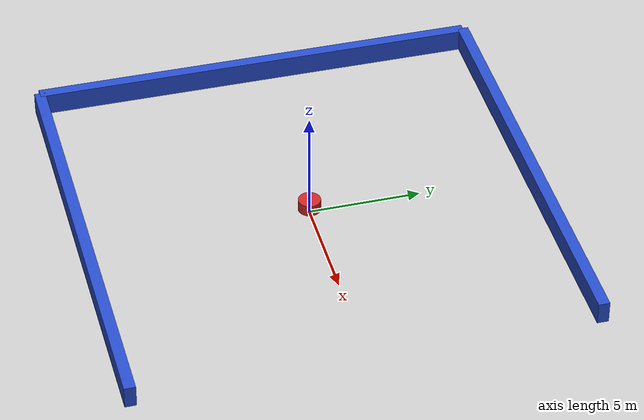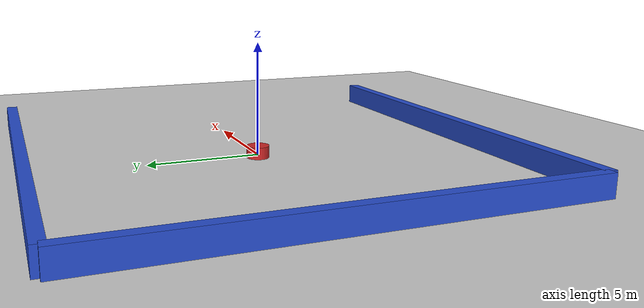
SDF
<?xml version="1.0" ?>
<sdf version="1.6">
   <world name="default">
    <model name="ground_plane">
      <static>1</static>
      <link name="link">
        <collision name="collision">
          <geometry><plane><normal>0 0 1</normal><size>100 100</size></plane></geometry>
          <surface><friction><ode><mu>100</mu><mu2>50</mu2></ode><torsional><ode/></torsional></friction><contact><ode/></contact></surface>
        </collision>
        <visual name="visual">
          <cast_shadows>0</cast_shadows>
          <geometry><plane><normal>0 0 1</normal><size>100 100</size></plane></geometry>
          <material><ambient>0.8 0.8 0.8 1</ambient><diffuse>0.8 0.8 0.8 1</diffuse><specular>0.01 0.01 0.01 1</specular></material>
        </visual>
      </link>
    </model>
    <light name="sun" type="directional">
      <cast_shadows>1</cast_shadows>
      <pose>0 0 10 0 0 0</pose>
      <diffuse>1 1 1 1</diffuse>
      <specular>0.1 0.1 0.1 1</specular>
      <attenuation><range>1000</range><constant>0.9</constant><linear>0.01</linear><quadratic>0.001</quadratic></attenuation>
      <direction>-0.5 0.5 -1</direction>
    </light>

    <model name='hardlibobs_110'>
      <static>1</static>
      <pose frame=''>-0.225000 0.075000 0.000000 0.000000 0.000000 0.000000</pose>
      <link name='link'>
        <inertial>
          <mass>1</mass>
          <inertia>
            <ixx>0.145833</ixx>
            <ixy>0</ixy>
            <ixz>0</ixz>
            <iyy>0.145833</iyy>
            <iyz>0</iyz>
            <izz>0.125</izz>
          </inertia>
        </inertial>
        <collision name='collision'>
           <geometry>
            <cylinder>
                <radius>0.5000</radius>
                 <length> 1 </length>
            </cylinder>
          </geometry>
           <surface>
            <contact>
              <ode/>
            </contact>
            <bounce/>
            <friction>
              <torsional>
                <ode/>
              </torsional>
              <ode/>
            </friction>
          </surface>
        </collision>
        <visual name='visual'>
           <geometry>
            <cylinder>
                <radius>0.5000</radius>
                 <length> 1 </length>
            </cylinder>
          </geometry>
          <material>
            <script>
              <name>Gazebo/Red</name>
              <uri>file://media/materials/scripts/gazebo.material</uri>
            </script>
          </material>
        </visual>
        <self_collide>0</self_collide>
        <kinematic>0</kinematic>
        <gravity>1</gravity>
      </link>
      <plugin name='hardlibobs_110' filename='hardlibobs_110.so'/>
    </model>

    <model name='hardlibobs_57'>
      <static>1</static>
      <pose frame=''>-0.225000 0.075000 0.000000 0.000000 0.000000 0.000000</pose>
      <link name='link'>
        <inertial>
          <mass>1</mass>
          <inertia>
            <ixx>0.145833</ixx>
            <ixy>0</ixy>
            <ixz>0</ixz>
            <iyy>0.145833</iyy>
            <iyz>0</iyz>
            <izz>0.125</izz>
          </inertia>
        </inertial>
        <collision name='collision'>
           <geometry>
            <cylinder>
                <radius>0.5000</radius>
                 <length> 1 </length>
            </cylinder>
          </geometry>
           <surface>
            <contact>
              <ode/>
            </contact>
            <bounce/>
            <friction>
              <torsional>
                <ode/>
              </torsional>
              <ode/>
            </friction>
          </surface>
        </collision>
        <visual name='visual'>
           <geometry>
            <cylinder>
                <radius>0.5000</radius>
                 <length> 1 </length>
            </cylinder>
          </geometry>
          <material>
            <script>
              <name>Gazebo/Red</name>
              <uri>file://media/materials/scripts/gazebo.material</uri>
            </script>
          </material>
        </visual>
        <self_collide>0</self_collide>
        <kinematic>0</kinematic>
        <gravity>1</gravity>
      </link>
      <plugin name='hardlibobs_57' filename='hardlibobs_57.so'/>
    </model>

    <model name='hardlibobs_53'>
      <static>1</static>
      <pose frame=''>-0.225000 0.075000 0.000000 0.000000 0.000000 0.000000</pose>
      <link name='link'>
        <inertial>
          <mass>1</mass>
          <inertia>
            <ixx>0.145833</ixx>
            <ixy>0</ixy>
            <ixz>0</ixz>
            <iyy>0.145833</iyy>
            <iyz>0</iyz>
            <izz>0.125</izz>
          </inertia>
        </inertial>
        <collision name='collision'>
           <geometry>
            <cylinder>
                <radius>0.5000</radius>
                 <length> 1 </length>
            </cylinder>
          </geometry>
           <surface>
            <contact>
              <ode/>
            </contact>
            <bounce/>
            <friction>
              <torsional>
                <ode/>
              </torsional>
              <ode/>
            </friction>
          </surface>
        </collision>
        <visual name='visual'>
           <geometry>
            <cylinder>
                <radius>0.5000</radius>
                 <length> 1 </length>
            </cylinder>
          </geometry>
          <material>
            <script>
              <name>Gazebo/Red</name>
              <uri>file://media/materials/scripts/gazebo.material</uri>
            </script>
          </material>
        </visual>
        <self_collide>0</self_collide>
        <kinematic>0</kinematic>
        <gravity>1</gravity>
      </link>
      <plugin name='hardlibobs_53' filename='hardlibobs_53.so'/>
    </model>

    <model name='hardlibobs_137'>
      <static>1</static>
      <pose frame=''>-0.225000 0.075000 0.000000 0.000000 0.000000 0.000000</pose>
      <link name='link'>
        <inertial>
          <mass>1</mass>
          <inertia>
            <ixx>0.145833</ixx>
            <ixy>0</ixy>
            <ixz>0</ixz>
            <iyy>0.145833</iyy>
            <iyz>0</iyz>
            <izz>0.125</izz>
          </inertia>
        </inertial>
        <collision name='collision'>
           <geometry>
            <cylinder>
                <radius>0.5000</radius>
                 <length> 1 </length>
            </cylinder>
          </geometry>
           <surface>
            <contact>
              <ode/>
            </contact>
            <bounce/>
            <friction>
              <torsional>
                <ode/>
              </torsional>
              <ode/>
            </friction>
          </surface>
        </collision>
        <visual name='visual'>
           <geometry>
            <cylinder>
                <radius>0.5000</radius>
                 <length> 1 </length>
            </cylinder>
          </geometry>
          <material>
            <script>
              <name>Gazebo/Red</name>
              <uri>file://media/materials/scripts/gazebo.material</uri>
            </script>
          </material>
        </visual>
        <self_collide>0</self_collide>
        <kinematic>0</kinematic>
        <gravity>1</gravity>
      </link>
      <plugin name='hardlibobs_137' filename='hardlibobs_137.so'/>
    </model>

    <model name='hardlibobs_120'>
      <static>1</static>
      <pose frame=''>-0.225000 0.075000 0.000000 0.000000 0.000000 0.000000</pose>
      <link name='link'>
        <inertial>
          <mass>1</mass>
          <inertia>
            <ixx>0.145833</ixx>
            <ixy>0</ixy>
            <ixz>0</ixz>
            <iyy>0.145833</iyy>
            <iyz>0</iyz>
            <izz>0.125</izz>
          </inertia>
        </inertial>
        <collision name='collision'>
           <geometry>
            <cylinder>
                <radius>0.5000</radius>
                 <length> 1 </length>
            </cylinder>
          </geometry>
           <surface>
            <contact>
              <ode/>
            </contact>
            <bounce/>
            <friction>
              <torsional>
                <ode/>
              </torsional>
              <ode/>
            </friction>
          </surface>
        </collision>
        <visual name='visual'>
           <geometry>
            <cylinder>
                <radius>0.5000</radius>
                 <length> 1 </length>
            </cylinder>
          </geometry>
          <material>
            <script>
              <name>Gazebo/Red</name>
              <uri>file://media/materials/scripts/gazebo.material</uri>
            </script>
          </material>
        </visual>
        <self_collide>0</self_collide>
        <kinematic>0</kinematic>
        <gravity>1</gravity>
      </link>
      <plugin name='hardlibobs_120' filename='hardlibobs_120.so'/>
    </model>

    <model name='hardlibobs_166'>
      <static>1</static>
      <pose frame=''>-0.225000 0.075000 0.000000 0.000000 0.000000 0.000000</pose>
      <link name='link'>
        <inertial>
          <mass>1</mass>
          <inertia>
            <ixx>0.145833</ixx>
            <ixy>0</ixy>
            <ixz>0</ixz>
            <iyy>0.145833</iyy>
            <iyz>0</iyz>
            <izz>0.125</izz>
          </inertia>
        </inertial>
        <collision name='collision'>
           <geometry>
            <cylinder>
                <radius>0.5000</radius>
                 <length> 1 </length>
            </cylinder>
          </geometry>
           <surface>
            <contact>
              <ode/>
            </contact>
            <bounce/>
            <friction>
              <torsional>
                <ode/>
              </torsional>
              <ode/>
            </friction>
          </surface>
        </collision>
        <visual name='visual'>
           <geometry>
            <cylinder>
                <radius>0.5000</radius>
                 <length> 1 </length>
            </cylinder>
          </geometry>
          <material>
            <script>
              <name>Gazebo/Red</name>
              <uri>file://media/materials/scripts/gazebo.material</uri>
            </script>
          </material>
        </visual>
        <self_collide>0</self_collide>
        <kinematic>0</kinematic>
        <gravity>1</gravity>
      </link>
      <plugin name='hardlibobs_166' filename='hardlibobs_166.so'/>
    </model>

    <model name='hardlibobs_177'>
      <static>1</static>
      <pose frame=''>-0.225000 0.075000 0.000000 0.000000 0.000000 0.000000</pose>
      <link name='link'>
        <inertial>
          <mass>1</mass>
          <inertia>
            <ixx>0.145833</ixx>
            <ixy>0</ixy>
            <ixz>0</ixz>
            <iyy>0.145833</iyy>
            <iyz>0</iyz>
            <izz>0.125</izz>
          </inertia>
        </inertial>
        <collision name='collision'>
           <geometry>
            <cylinder>
                <radius>0.5000</radius>
                 <length> 1 </length>
            </cylinder>
          </geometry>
           <surface>
            <contact>
              <ode/>
            </contact>
            <bounce/>
            <friction>
              <torsional>
                <ode/>
              </torsional>
              <ode/>
            </friction>
          </surface>
        </collision>
        <visual name='visual'>
           <geometry>
            <cylinder>
                <radius>0.5000</radius>
                 <length> 1 </length>
            </cylinder>
          </geometry>
          <material>
            <script>
              <name>Gazebo/Red</name>
              <uri>file://media/materials/scripts/gazebo.material</uri>
            </script>
          </material>
        </visual>
        <self_collide>0</self_collide>
        <kinematic>0</kinematic>
        <gravity>1</gravity>
      </link>
      <plugin name='hardlibobs_177' filename='hardlibobs_177.so'/>
    </model>

    <model name='hardlibobs_181'>
      <static>1</static>
      <pose frame=''>-0.225000 0.075000 0.000000 0.000000 0.000000 0.000000</pose>
      <link name='link'>
        <inertial>
          <mass>1</mass>
          <inertia>
            <ixx>0.145833</ixx>
            <ixy>0</ixy>
            <ixz>0</ixz>
            <iyy>0.145833</iyy>
            <iyz>0</iyz>
            <izz>0.125</izz>
          </inertia>
        </inertial>
        <collision name='collision'>
           <geometry>
            <cylinder>
                <radius>0.5000</radius>
                 <length> 1 </length>
            </cylinder>
          </geometry>
           <surface>
            <contact>
              <ode/>
            </contact>
            <bounce/>
            <friction>
              <torsional>
                <ode/>
              </torsional>
              <ode/>
            </friction>
          </surface>
        </collision>
        <visual name='visual'>
           <geometry>
            <cylinder>
                <radius>0.5000</radius>
                 <length> 1 </length>
            </cylinder>
          </geometry>
          <material>
            <script>
              <name>Gazebo/Red</name>
              <uri>file://media/materials/scripts/gazebo.material</uri>
            </script>
          </material>
        </visual>
        <self_collide>0</self_collide>
        <kinematic>0</kinematic>
        <gravity>1</gravity>
      </link>
      <plugin name='hardlibobs_181' filename='hardlibobs_181.so'/>
    </model>

    <model name='hardlibobs_54'>
      <static>1</static>
      <pose frame=''>-0.225000 0.075000 0.000000 0.000000 0.000000 0.000000</pose>
      <link name='link'>
        <inertial>
          <mass>1</mass>
          <inertia>
            <ixx>0.145833</ixx>
            <ixy>0</ixy>
            <ixz>0</ixz>
            <iyy>0.145833</iyy>
            <iyz>0</iyz>
            <izz>0.125</izz>
          </inertia>
        </inertial>
        <collision name='collision'>
           <geometry>
            <cylinder>
                <radius>0.5000</radius>
                 <length> 1 </length>
            </cylinder>
          </geometry>
           <surface>
            <contact>
              <ode/>
            </contact>
            <bounce/>
            <friction>
              <torsional>
                <ode/>
              </torsional>
              <ode/>
            </friction>
          </surface>
        </collision>
        <visual name='visual'>
           <geometry>
            <cylinder>
                <radius>0.5000</radius>
                 <length> 1 </length>
            </cylinder>
          </geometry>
          <material>
            <script>
              <name>Gazebo/Red</name>
              <uri>file://media/materials/scripts/gazebo.material</uri>
            </script>
          </material>
        </visual>
        <self_collide>0</self_collide>
        <kinematic>0</kinematic>
        <gravity>1</gravity>
      </link>
      <plugin name='hardlibobs_54' filename='hardlibobs_54.so'/>
    </model>

    <model name='hardlibobs_52'>
      <static>1</static>
      <pose frame=''>-0.225000 0.075000 0.000000 0.000000 0.000000 0.000000</pose>
      <link name='link'>
        <inertial>
          <mass>1</mass>
          <inertia>
            <ixx>0.145833</ixx>
            <ixy>0</ixy>
            <ixz>0</ixz>
            <iyy>0.145833</iyy>
            <iyz>0</iyz>
            <izz>0.125</izz>
          </inertia>
        </inertial>
        <collision name='collision'>
           <geometry>
            <cylinder>
                <radius>0.5000</radius>
                 <length> 1 </length>
            </cylinder>
          </geometry>
           <surface>
            <contact>
              <ode/>
            </contact>
            <bounce/>
            <friction>
              <torsional>
                <ode/>
              </torsional>
              <ode/>
            </friction>
          </surface>
        </collision>
        <visual name='visual'>
           <geometry>
            <cylinder>
                <radius>0.5000</radius>
                 <length> 1 </length>
            </cylinder>
          </geometry>
          <material>
            <script>
              <name>Gazebo/Red</name>
              <uri>file://media/materials/scripts/gazebo.material</uri>
            </script>
          </material>
        </visual>
        <self_collide>0</self_collide>
        <kinematic>0</kinematic>
        <gravity>1</gravity>
      </link>
      <plugin name='hardlibobs_52' filename='hardlibobs_52.so'/>
    </model>

    <model name='hardlibobs_122'>
      <static>1</static>
      <pose frame=''>-0.225000 0.075000 0.000000 0.000000 0.000000 0.000000</pose>
      <link name='link'>
        <inertial>
          <mass>1</mass>
          <inertia>
            <ixx>0.145833</ixx>
            <ixy>0</ixy>
            <ixz>0</ixz>
            <iyy>0.145833</iyy>
            <iyz>0</iyz>
            <izz>0.125</izz>
          </inertia>
        </inertial>
        <collision name='collision'>
           <geometry>
            <cylinder>
                <radius>0.5000</radius>
                 <length> 1 </length>
            </cylinder>
          </geometry>
           <surface>
            <contact>
              <ode/>
            </contact>
            <bounce/>
            <friction>
              <torsional>
                <ode/>
              </torsional>
              <ode/>
            </friction>
          </surface>
        </collision>
        <visual name='visual'>
           <geometry>
            <cylinder>
                <radius>0.5000</radius>
                 <length> 1 </length>
            </cylinder>
          </geometry>
          <material>
            <script>
              <name>Gazebo/Red</name>
              <uri>file://media/materials/scripts/gazebo.material</uri>
            </script>
          </material>
        </visual>
        <self_collide>0</self_collide>
        <kinematic>0</kinematic>
        <gravity>1</gravity>
      </link>
      <plugin name='hardlibobs_122' filename='hardlibobs_122.so'/>
    </model>

      <model name="back_wall">
      <static>1</static>\   <pose>-10 0 .5 0 0 0</pose>        <link name="box_link">

	<collision name='collision'>
            <geometry>
              <box>
                <size>.5 20 1</size>
              </box>
            </geometry>
           <surface>
            <contact>
              <ode/>
            </contact>
            <bounce/>
            <friction>
              <torsional>
                <ode/>
              </torsional>
              <ode/>
            </friction>
          </surface>
        </collision>

          <visual name="visual">
            <geometry>
              <box>
                <size>.5 20 1</size>
              </box>
            </geometry>
          <material>
                 <script>
                     <name>Gazebo/Blue</name>
                         <uri>file://media/materials/scripts/gazebo.material</uri>
                         </script>
                     </material>
          </visual>
        </link>
      </model>
      <model name="top_wall">
      <static>1</static>
       <pose>0 10 .5 0 0 0</pose>        <link name="box_link">

	<collision name='collision'>
           <geometry>
              <box>
                <size>20 .5 1</size>
              </box>
            </geometry>
           <surface>
            <contact>
              <ode/>
            </contact>
            <bounce/>
            <friction>
              <torsional>
                <ode/>
              </torsional>
              <ode/>
            </friction>
          </surface>
        </collision>
          <visual name="visual">
            <geometry>
              <box>
                <size>20 .5 1</size>
              </box>
            </geometry>
          <material>
                 <script>
                     <name>Gazebo/Blue</name>
                         <uri>file://media/materials/scripts/gazebo.material</uri>
                         </script>
                     </material>
          </visual>
        </link>
      </model>
      <model name="bottom_wall">
      <static>1</static>
       <pose>0 -10 .5 0 0 0</pose>        <link name="box_link">
	<collision name='collision'>
            <geometry>
              <box>
                <size>20 .5 1</size>
              </box>
            </geometry>
           <surface>
            <contact>
              <ode/>
            </contact>
            <bounce/>
            <friction>
              <torsional>
                <ode/>
              </torsional>
              <ode/>
            </friction>
          </surface>
        </collision>
          <visual name="visual">
            <geometry>
              <box>
                <size>20 .5 1</size>
              </box>
            </geometry>
          <material>
                 <script>
                     <name>Gazebo/Blue</name>
                         <uri>file://media/materials/scripts/gazebo.material</uri>
                         </script>
                     </material>
          </visual>
        </link>
      </model>
   </world>
</sdf>
